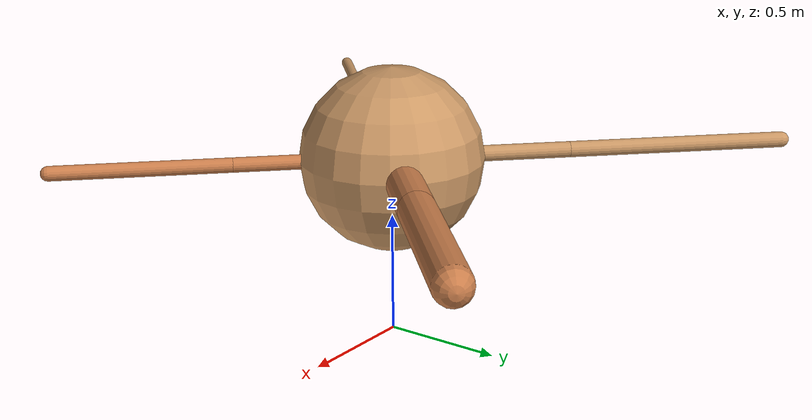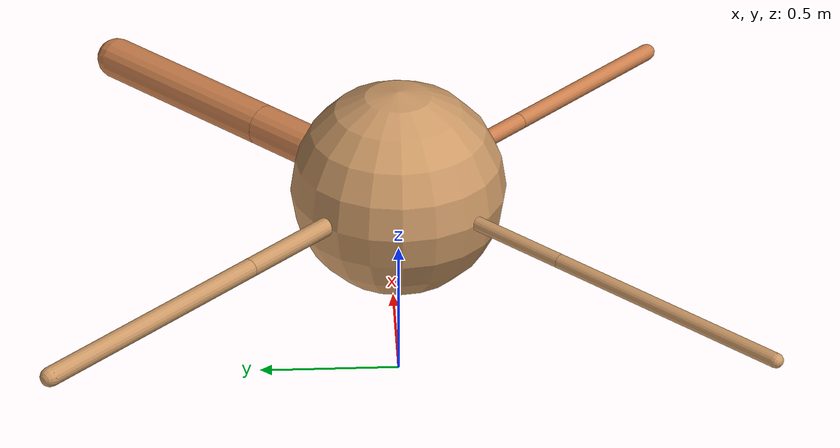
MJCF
<?xml version="1.0" ?>
<mujoco model="ant">

	<compiler angle="degree" coordinate="local" inertiafromgeom="true"/>

	<option integrator="RK4" timestep="0.01"/>

	<custom>

		<numeric data="0.0 0.0 0.55 1.0 0.0 0.0 0.0 0.0 1.0 0.0 -1.0 0.0 -1.0 0.0 1.0" name="init_qpos"/>

	</custom>

	<default>

		<joint armature="1" damping="1" limited="true"/>

		<geom conaffinity="0" condim="3" density="5.0" friction="1.5 0.1 0.1" margin="0.01" rgba="0.8 0.6 0.4 1"/>

	</default>

	<worldbody>

		<body name="torso" pos="0 0 0.75">

			<geom name="torso_geom" pos="0 0 0" size="0.3799872946879241" type="sphere"/>

			<!--joint armature="0" damping="0" limited="false" margin="0.01" name="root" pos="0 0 0" type="free"/-->

			<body name="front_left_leg" pos="0 0 0">

				<geom fromto="0 0 0 0.2 0.2 0" name="aux_1_geom" size="0.07523030253835013" type="capsule" rgba=".8 .5 .3 1"/>

				<body name="aux_1" pos="0.2 0.2 0">

					<joint axis="0 0 1" name="hip_1" pos="0.0 0.0 0.0" range="-40 40" type="hinge"/>

					<geom fromto="0 0 0 0.26927273393679035 0.26927273393679035 0" name="left_leg_geom" size="0.07523030253835013" type="capsule" rgba=".8 .5 .3 1"/>

					<body pos="0.26927273393679035 0.26927273393679035 0" name="front_left_foot">

						<joint axis="-1 1 0" name="ankle_1" pos="0.0 0.0 0.0" range="30 100" type="hinge"/>

						<geom fromto="0 0 0 0.5385454678735807 0.5385454678735807 0" name="left_ankle_geom" size="0.07523030253835013" type="capsule" rgba=".8 .5 .3 1"/>

					</body>

				</body>

			</body>

			<body name="front_right_leg" pos="0 0 0">

				<geom fromto="0 0 0 -0.2 0.2 0" name="aux_2_geom" size="0.03345964642578251" type="capsule"/>

				<body name="aux_2" pos="-0.2 0.2 0">

					<joint axis="0 0 1" name="hip_2" pos="0.0 0.0 0.0" range="-40 40" type="hinge"/>

					<geom fromto="0 0 0 -0.3253213607570481 0.3253213607570481 0" name="right_leg_geom" size="0.03345964642578251" type="capsule"/>

					<body pos="-0.3253213607570481 0.3253213607570481 0" name="front_right_foot">

						<joint axis="1 1 0" name="ankle_2" pos="0.0 0.0 0.0" range="-100 -30" type="hinge"/>

						<geom fromto="0 0 0 -0.6506427215140962 0.6506427215140962 0" name="right_ankle_geom" size="0.03345964642578251" type="capsule"/>

					</body>

				</body>

			</body>

			<body name="left_back_leg" pos="0 0 0">

				<geom fromto="0 0 0 -0.2 -0.2 0" name="aux_3_geom" size="0.025406525234841854" type="capsule"/>

				<body name="aux_3" pos="-0.2 -0.2 0">

					<joint axis="0 0 1" name="hip_3" pos="0.0 0.0 0.0" range="-40 40" type="hinge"/>

					<geom fromto="0 0 0 -0.3270272280170644 -0.3270272280170644 0" name="back_leg_geom" size="0.025406525234841854" type="capsule"/>

					<body pos="-0.3270272280170644 -0.3270272280170644 0" name="left_back_foot">

						<joint axis="-1 1 0" name="ankle_3" pos="0.0 0.0 0.0" range="-100 -30" type="hinge"/>

						<geom fromto="0 0 0 -0.6540544560341288 -0.6540544560341288 0" name="third_ankle_geom" size="0.025406525234841854" type="capsule"/>

					</body>

				</body>

			</body>

			<body name="right_back_leg" pos="0 0 0">

				<geom fromto="0 0 0 0.2 -0.2 0" name="aux_4_geom" size="0.030747916947143867" type="capsule" rgba=".8 .5 .3 1"/>

				<body name="aux_4" pos="0.2 -0.2 0">

					<joint axis="0 0 1" name="hip_4" pos="0.0 0.0 0.0" range="-40 40" type="hinge"/>

					<geom fromto="0 0 0 0.25631327416706334 -0.25631327416706334 0" name="rightback_leg_geom" size="0.030747916947143867" type="capsule" rgba=".8 .5 .3 1"/>

					<body pos="0.25631327416706334 -0.25631327416706334 0" name="right_back_foot">

						<joint axis="1 1 0" name="ankle_4" pos="0.0 0.0 0.0" range="30 100" type="hinge"/>

						<geom fromto="0 0 0 0.5126265483341267 -0.5126265483341267 0" name="fourth_ankle_geom" size="0.030747916947143867" type="capsule" rgba=".8 .5 .3 1"/>

					</body>

				</body>

			</body>

		</body>

	</worldbody>

	<actuator>

		<motor ctrllimited="true" ctrlrange="-1.0 1.0" joint="hip_4" gear="150"/>

		<motor ctrllimited="true" ctrlrange="-1.0 1.0" joint="ankle_4" gear="150"/>

		<motor ctrllimited="true" ctrlrange="-1.0 1.0" joint="hip_1" gear="150"/>

		<motor ctrllimited="true" ctrlrange="-1.0 1.0" joint="ankle_1" gear="150"/>

		<motor ctrllimited="true" ctrlrange="-1.0 1.0" joint="hip_2" gear="150"/>

		<motor ctrllimited="true" ctrlrange="-1.0 1.0" joint="ankle_2" gear="150"/>

		<motor ctrllimited="true" ctrlrange="-1.0 1.0" joint="hip_3" gear="150"/>

		<motor ctrllimited="true" ctrlrange="-1.0 1.0" joint="ankle_3" gear="150"/>

	</actuator>

</mujoco>
